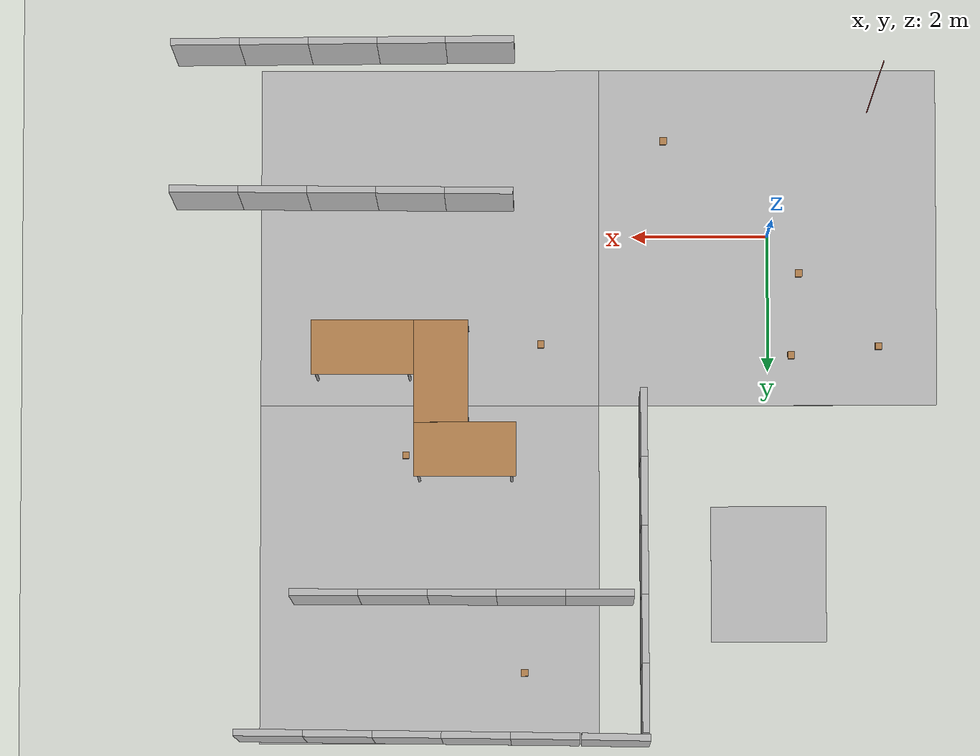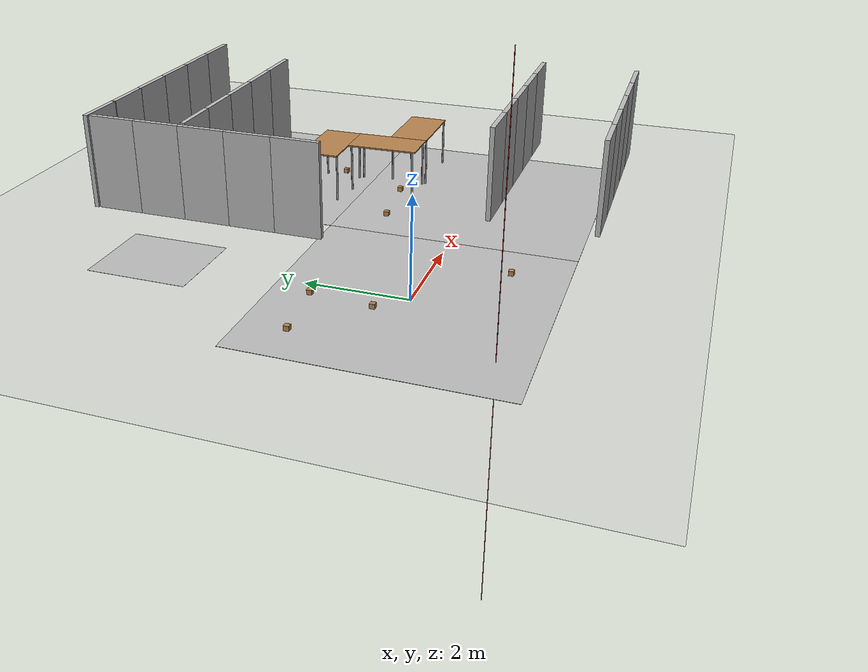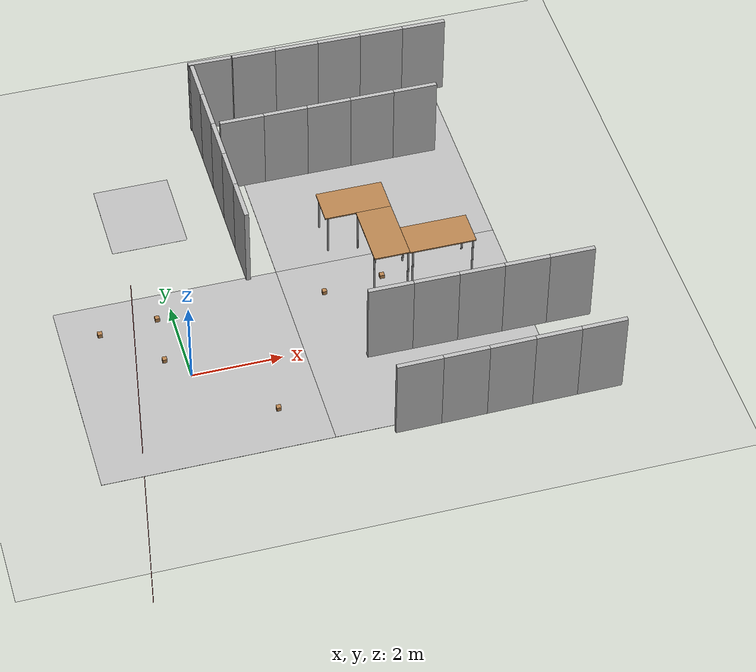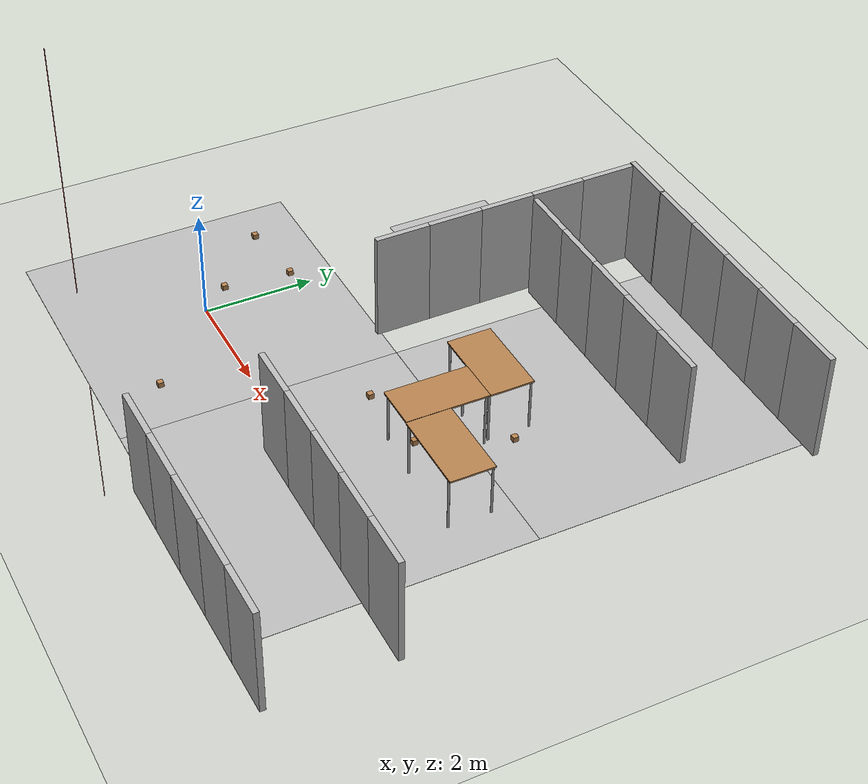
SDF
<sdf version="1.7">
 <world name="default">
  <model name="ground_plane">
   <static>1</static>
   <link name="link">
    <collision name="collision">
     <geometry><plane><normal>0 0 1</normal><size>100 100</size></plane></geometry>
     <surface><friction><ode><mu>100</mu><mu2>50</mu2></ode></friction></surface>
    </collision>
    <visual name="visual">
     <cast_shadows>0</cast_shadows>
     <geometry><plane><normal>0 0 1</normal><size>100 100</size></plane></geometry>
     <material>
      <script><uri>file://media/materials/scripts/gazebo.material</uri><name>Gazebo/Grey</name></script>
     </material>
    </visual>
   </link>
  </model>
  <model name="line_flooring">
   <link name="link">
    <collision name="collision">
     <geometry><plane><normal>0 0 1</normal><size>5 5</size></plane></geometry>
     <surface><friction><ode><mu>100</mu><mu2>50</mu2></ode></friction></surface>
    </collision>
    <visual name="visual">
     <geometry><plane><normal>0 0 1</normal><size>5 5</size></plane></geometry>
     <material>
      <script>
       <uri>model://env_line_flooring/materials/test_texture.material</uri>
       <name>LineFlooringTexture</name>
      </script>
     </material>
    </visual>
   </link>
   <pose>0 0 0.001 0 -0 0</pose>
   <static>1</static>
  </model>
  <model name="line_flooring2">
   <link name="link">
    <collision name="collision">
     <geometry><plane><normal>0 0 1</normal><size>5 5</size></plane></geometry>
     <surface><friction><ode><mu>100</mu><mu2>50</mu2></ode></friction></surface>
    </collision>
    <visual name="visual">
     <geometry><plane><normal>0 0 1</normal><size>5 5</size></plane></geometry>
     <material>
      <script>
       <uri>model://env_line_flooring/materials/test_texture.material</uri>
       <name>LineFlooringTexture</name>
      </script>
     </material>
    </visual>
   </link>
   <pose>5 0 0.001 0 -0 0</pose>
   <static>1</static>
  </model>
  <model name="line_flooring3">
   <link name="link">
    <collision name="collision">
     <geometry><plane><normal>0 0 1</normal><size>5 5</size></plane></geometry>
     <surface><friction><ode><mu>100</mu><mu2>50</mu2></ode></friction></surface>
    </collision>
    <visual name="visual">
     <geometry><plane><normal>0 0 1</normal><size>5 5</size></plane></geometry>
     <material>
      <script>
       <uri>model://env_line_flooring/materials/test_texture.material</uri>
       <name>LineFlooringTexture</name>
      </script>
     </material>
    </visual>
   </link>
   <pose>5 5 0.001 0 -0 3.1415</pose>
   <static>1</static>
  </model>
  <model name="table">
   <static>1</static>
   <link name="link">
    <collision name="surface">
     <pose>0 0 1 0 -0 0</pose>
     <geometry><box><size>1.5 0.8 0.03</size></box></geometry>
     <surface><friction><ode><mu>0.6</mu><mu2>0.6</mu2></ode></friction></surface>
    </collision>
    <visual name="visual1">
     <pose>0 0 1 0 -0 0</pose>
     <geometry><box><size>1.5 0.8 0.03</size></box></geometry>
     <material>
      <script><uri>file://media/materials/scripts/gazebo.material</uri><name>Gazebo/Wood</name></script>
     </material>
    </visual>
    <collision name="front_left_leg">
     <pose>0.68 0.38 0.5 0 -0 0</pose>
     <geometry><cylinder><radius>0.02</radius><length>1</length></cylinder></geometry>
    </collision>
    <visual name="front_left_leg">
     <pose>0.68 0.38 0.5 0 -0 0</pose>
     <geometry><cylinder><radius>0.02</radius><length>1</length></cylinder></geometry>
     <material>
      <script><uri>file://media/materials/scripts/gazebo.material</uri><name>Gazebo/Grey</name></script>
     </material>
    </visual>
    <collision name="front_right_leg">
     <pose>0.68 -0.38 0.5 0 -0 0</pose>
     <geometry><cylinder><radius>0.02</radius><length>1</length></cylinder></geometry>
    </collision>
    <visual name="front_right_leg">
     <pose>0.68 -0.38 0.5 0 -0 0</pose>
     <geometry><cylinder><radius>0.02</radius><length>1</length></cylinder></geometry>
     <material>
      <script><uri>file://media/materials/scripts/gazebo.material</uri><name>Gazebo/Grey</name></script>
     </material>
    </visual>
    <collision name="back_right_leg">
     <pose>-0.68 -0.38 0.5 0 -0 0</pose>
     <geometry><cylinder><radius>0.02</radius><length>1</length></cylinder></geometry>
    </collision>
    <visual name="back_right_leg">
     <pose>-0.68 -0.38 0.5 0 -0 0</pose>
     <geometry><cylinder><radius>0.02</radius><length>1</length></cylinder></geometry>
     <material>
      <script><uri>file://media/materials/scripts/gazebo.material</uri><name>Gazebo/Grey</name></script>
     </material>
    </visual>
    <collision name="back_left_leg">
     <pose>-0.68 0.38 0.5 0 -0 0</pose>
     <geometry><cylinder><radius>0.02</radius><length>1</length></cylinder></geometry>
    </collision>
    <visual name="back_left_leg">
     <pose>-0.68 0.38 0.5 0 -0 0</pose>
     <geometry><cylinder><radius>0.02</radius><length>1</length></cylinder></geometry>
     <material>
      <script><uri>file://media/materials/scripts/gazebo.material</uri><name>Gazebo/Grey</name></script>
     </material>
    </visual>
   </link>
   <pose>4.81799 2.07912 0.010412 -4.7e-05 -0.009088 -1.56892</pose>
  </model>
  <model name="wood_cube_10cm">
   <link name="link">
    <pose>0 0 0.05 0 -0 0</pose>
    <inertial>
     <mass>0.5167</mass>
     <inertia>
      <ixx>0.000861167</ixx>
      <ixy>0</ixy>
      <ixz>0</ixz>
      <iyy>0.000861167</iyy>
      <iyz>0</iyz>
      <izz>0.000861167</izz>
     </inertia>
    </inertial>
    <collision name="collision">
     <geometry><box><size>0.1 0.1 0.1</size></box></geometry>
     <surface>
      <contact>
       <poissons_ratio>0.347</poissons_ratio>
       <elastic_modulus>8.8e+09</elastic_modulus>
       <ode><kp>100000</kp><kd>100</kd><max_vel>100</max_vel><min_depth>0.001</min_depth></ode>
      </contact>
      <friction>
       <torsional>
        <coefficient>1</coefficient>
        <use_patch_radius>0</use_patch_radius>
        <surface_radius>0.01</surface_radius>
       </torsional>
      </friction>
     </surface>
    </collision>
    <visual name="visual">
     <geometry><box><size>0.1 0.1 0.1</size></box></geometry>
     <material>
      <script><uri>file://media/materials/scripts/gazebo.material</uri><name>Gazebo/Wood</name></script>
     </material>
    </visual>
   </link>
   <pose>1.54178 -1.4356 -3e-06 1e-06 -3e-06 -1e-06</pose>
  </model>
  <model name="env_large_room">
   <link name="base">
    <inertial>
     <mass>100</mass>
     <inertia><ixx>33.4</ixx><ixy>0</ixy><ixz>0</ixz><iyy>41.7</iyy><iyz>0</iyz><izz>8.42</izz></inertia>
    </inertial>
    <collision name="collision1">
     <pose>-2 0 0 0 -0 0</pose>
     <geometry><box><size>1 0.1 2</size></box></geometry>
    </collision>
    <collision name="collision2">
     <pose>-1 0 0 0 -0 0</pose>
     <geometry><box><size>1 0.1 2</size></box></geometry>
    </collision>
    <collision name="collision3"><geometry><box><size>1 0.1 2</size></box></geometry></collision>
    <collision name="collision4">
     <pose>1 0 0 0 -0 0</pose>
     <geometry><box><size>1 0.1 2</size></box></geometry>
    </collision>
    <collision name="collision5">
     <pose>2 0 0 0 -0 0</pose>
     <geometry><box><size>1 0.1 2</size></box></geometry>
    </collision>
    <visual name="visual1">
     <pose>-2 0 0 0 -0 0</pose>
     <geometry><box><size>1 0.1 2</size></box></geometry>
     <material>
      <script><uri>model://env_wall/materials/test_texture.material</uri><name>WallTexture01</name></script>
     </material>
    </visual>
    <visual name="visual2">
     <pose>-1 0 0 0 -0 0</pose>
     <geometry><box><size>1 0.1 2</size></box></geometry>
     <material>
      <script><uri>model://env_wall/materials/test_texture.material</uri><name>WallTexture01</name></script>
     </material>
    </visual>
    <visual name="visual3">
     <geometry><box><size>1 0.1 2</size></box></geometry>
     <material>
      <script><uri>model://env_wall/materials/test_texture.material</uri><name>WallTexture01</name></script>
     </material>
    </visual>
    <visual name="visual4">
     <pose>1 0 0 0 -0 0</pose>
     <geometry><box><size>1 0.1 2</size></box></geometry>
     <material>
      <script><uri>model://env_wall/materials/test_texture.material</uri><name>WallTexture01</name></script>
     </material>
    </visual>
    <visual name="visual5">
     <pose>2 0 0 0 -0 0</pose>
     <geometry><box><size>1 0.1 2</size></box></geometry>
     <material>
      <script><uri>model://env_wall/materials/test_texture.material</uri><name>WallTexture01</name></script>
     </material>
    </visual>
   </link>
   <pose>4.49859 5.40134 1.0008 -6e-06 -0 -0.002793</pose>
  </model>
  <model name="env_large_room_0">
   <link name="base">
    <inertial>
     <mass>100</mass>
     <inertia><ixx>33.4</ixx><ixy>0</ixy><ixz>0</ixz><iyy>41.7</iyy><iyz>0</iyz><izz>8.42</izz></inertia>
    </inertial>
    <collision name="collision1">
     <pose>-2 0 0 0 -0 0</pose>
     <geometry><box><size>1 0.1 2</size></box></geometry>
    </collision>
    <collision name="collision2">
     <pose>-1 0 0 0 -0 0</pose>
     <geometry><box><size>1 0.1 2</size></box></geometry>
    </collision>
    <collision name="collision3"><geometry><box><size>1 0.1 2</size></box></geometry></collision>
    <collision name="collision4">
     <pose>1 0 0 0 -0 0</pose>
     <geometry><box><size>1 0.1 2</size></box></geometry>
    </collision>
    <collision name="collision5">
     <pose>2 0 0 0 -0 0</pose>
     <geometry><box><size>1 0.1 2</size></box></geometry>
    </collision>
    <visual name="visual1">
     <pose>-2 0 0 0 -0 0</pose>
     <geometry><box><size>1 0.1 2</size></box></geometry>
     <material>
      <script><uri>model://env_wall/materials/test_texture.material</uri><name>WallTexture01</name></script>
     </material>
    </visual>
    <visual name="visual2">
     <pose>-1 0 0 0 -0 0</pose>
     <geometry><box><size>1 0.1 2</size></box></geometry>
     <material>
      <script><uri>model://env_wall/materials/test_texture.material</uri><name>WallTexture01</name></script>
     </material>
    </visual>
    <visual name="visual3">
     <geometry><box><size>1 0.1 2</size></box></geometry>
     <material>
      <script><uri>model://env_wall/materials/test_texture.material</uri><name>WallTexture01</name></script>
     </material>
    </visual>
    <visual name="visual4">
     <pose>1 0 0 0 -0 0</pose>
     <geometry><box><size>1 0.1 2</size></box></geometry>
     <material>
      <script><uri>model://env_wall/materials/test_texture.material</uri><name>WallTexture01</name></script>
     </material>
    </visual>
    <visual name="visual5">
     <pose>2 0 0 0 -0 0</pose>
     <geometry><box><size>1 0.1 2</size></box></geometry>
     <material>
      <script><uri>model://env_wall/materials/test_texture.material</uri><name>WallTexture01</name></script>
     </material>
    </visual>
   </link>
   <pose>6.25772 -0.460538 1.001 4e-06 -4e-06 -0.006764</pose>
  </model>
  <model name="table_0">
   <static>1</static>
   <link name="link">
    <collision name="surface">
     <pose>0 0 1 0 -0 0</pose>
     <geometry><box><size>1.5 0.8 0.03</size></box></geometry>
     <surface><friction><ode><mu>0.6</mu><mu2>0.6</mu2></ode></friction></surface>
    </collision>
    <visual name="visual1">
     <pose>0 0 1 0 -0 0</pose>
     <geometry><box><size>1.5 0.8 0.03</size></box></geometry>
     <material>
      <script><uri>file://media/materials/scripts/gazebo.material</uri><name>Gazebo/Wood</name></script>
     </material>
    </visual>
    <collision name="front_left_leg">
     <pose>0.68 0.38 0.5 0 -0 0</pose>
     <geometry><cylinder><radius>0.02</radius><length>1</length></cylinder></geometry>
    </collision>
    <visual name="front_left_leg">
     <pose>0.68 0.38 0.5 0 -0 0</pose>
     <geometry><cylinder><radius>0.02</radius><length>1</length></cylinder></geometry>
     <material>
      <script><uri>file://media/materials/scripts/gazebo.material</uri><name>Gazebo/Grey</name></script>
     </material>
    </visual>
    <collision name="front_right_leg">
     <pose>0.68 -0.38 0.5 0 -0 0</pose>
     <geometry><cylinder><radius>0.02</radius><length>1</length></cylinder></geometry>
    </collision>
    <visual name="front_right_leg">
     <pose>0.68 -0.38 0.5 0 -0 0</pose>
     <geometry><cylinder><radius>0.02</radius><length>1</length></cylinder></geometry>
     <material>
      <script><uri>file://media/materials/scripts/gazebo.material</uri><name>Gazebo/Grey</name></script>
     </material>
    </visual>
    <collision name="back_right_leg">
     <pose>-0.68 -0.38 0.5 0 -0 0</pose>
     <geometry><cylinder><radius>0.02</radius><length>1</length></cylinder></geometry>
    </collision>
    <visual name="back_right_leg">
     <pose>-0.68 -0.38 0.5 0 -0 0</pose>
     <geometry><cylinder><radius>0.02</radius><length>1</length></cylinder></geometry>
     <material>
      <script><uri>file://media/materials/scripts/gazebo.material</uri><name>Gazebo/Grey</name></script>
     </material>
    </visual>
    <collision name="back_left_leg">
     <pose>-0.68 0.38 0.5 0 -0 0</pose>
     <geometry><cylinder><radius>0.02</radius><length>1</length></cylinder></geometry>
    </collision>
    <visual name="back_left_leg">
     <pose>-0.68 0.38 0.5 0 -0 0</pose>
     <geometry><cylinder><radius>0.02</radius><length>1</length></cylinder></geometry>
     <material>
      <script><uri>file://media/materials/scripts/gazebo.material</uri><name>Gazebo/Grey</name></script>
     </material>
    </visual>
   </link>
   <pose>4.46738 3.23399 0 0 -0 0</pose>
  </model>
  <model name="env_large_room_6">
   <link name="base">
    <inertial>
     <mass>100</mass>
     <inertia><ixx>33.4</ixx><ixy>0</ixy><ixz>0</ixz><iyy>41.7</iyy><iyz>0</iyz><izz>8.42</izz></inertia>
    </inertial>
    <collision name="collision1">
     <pose>-2 0 0 0 -0 0</pose>
     <geometry><box><size>1 0.1 2</size></box></geometry>
    </collision>
    <collision name="collision2">
     <pose>-1 0 0 0 -0 0</pose>
     <geometry><box><size>1 0.1 2</size></box></geometry>
    </collision>
    <collision name="collision3"><geometry><box><size>1 0.1 2</size></box></geometry></collision>
    <collision name="collision4">
     <pose>1 0 0 0 -0 0</pose>
     <geometry><box><size>1 0.1 2</size></box></geometry>
    </collision>
    <collision name="collision5">
     <pose>2 0 0 0 -0 0</pose>
     <geometry><box><size>1 0.1 2</size></box></geometry>
    </collision>
    <visual name="visual1">
     <pose>-2 0 0 0 -0 0</pose>
     <geometry><box><size>1 0.1 2</size></box></geometry>
     <material>
      <script><uri>model://env_wall/materials/test_texture.material</uri><name>WallTexture01</name></script>
     </material>
    </visual>
    <visual name="visual2">
     <pose>-1 0 0 0 -0 0</pose>
     <geometry><box><size>1 0.1 2</size></box></geometry>
     <material>
      <script><uri>model://env_wall/materials/test_texture.material</uri><name>WallTexture01</name></script>
     </material>
    </visual>
    <visual name="visual3">
     <geometry><box><size>1 0.1 2</size></box></geometry>
     <material>
      <script><uri>model://env_wall/materials/test_texture.material</uri><name>WallTexture01</name></script>
     </material>
    </visual>
    <visual name="visual4">
     <pose>1 0 0 0 -0 0</pose>
     <geometry><box><size>1 0.1 2</size></box></geometry>
     <material>
      <script><uri>model://env_wall/materials/test_texture.material</uri><name>WallTexture01</name></script>
     </material>
    </visual>
    <visual name="visual5">
     <pose>2 0 0 0 -0 0</pose>
     <geometry><box><size>1 0.1 2</size></box></geometry>
     <material>
      <script><uri>model://env_wall/materials/test_texture.material</uri><name>WallTexture01</name></script>
     </material>
    </visual>
   </link>
   <pose>6.24098 -2.64813 1.00079 -8e-06 8.3e-05 0.007746</pose>
  </model>
  <model name="wood_cube_10cm_0">
   <link name="link">
    <pose>0 0 0.05 0 -0 0</pose>
    <inertial>
     <mass>0.5167</mass>
     <inertia>
      <ixx>0.000861167</ixx>
      <ixy>0</ixy>
      <ixz>0</ixz>
      <iyy>0.000861167</iyy>
      <iyz>0</iyz>
      <izz>0.000861167</izz>
     </inertia>
    </inertial>
    <collision name="collision">
     <geometry><box><size>0.1 0.1 0.1</size></box></geometry>
     <surface>
      <contact>
       <poissons_ratio>0.347</poissons_ratio>
       <elastic_modulus>8.8e+09</elastic_modulus>
       <ode><kp>100000</kp><kd>100</kd><max_vel>100</max_vel><min_depth>0.001</min_depth></ode>
      </contact>
      <friction>
       <torsional>
        <coefficient>1</coefficient>
        <use_patch_radius>0</use_patch_radius>
        <surface_radius>0.01</surface_radius>
       </torsional>
      </friction>
     </surface>
    </collision>
    <visual name="visual">
     <geometry><box><size>0.1 0.1 0.1</size></box></geometry>
     <material>
      <script><uri>file://media/materials/scripts/gazebo.material</uri><name>Gazebo/Wood</name></script>
     </material>
    </visual>
   </link>
   <pose>3.59739 6.45566 -3e-06 -1e-06 3e-06 0</pose>
  </model>
  <model name="wood_cube_10cm_1">
   <link name="link">
    <pose>0 0 0.05 0 -0 0</pose>
    <inertial>
     <mass>0.5167</mass>
     <inertia>
      <ixx>0.000861167</ixx>
      <ixy>0</ixy>
      <ixz>0</ixz>
      <iyy>0.000861167</iyy>
      <iyz>0</iyz>
      <izz>0.000861167</izz>
     </inertia>
    </inertial>
    <collision name="collision">
     <geometry><box><size>0.1 0.1 0.1</size></box></geometry>
     <surface>
      <contact>
       <poissons_ratio>0.347</poissons_ratio>
       <elastic_modulus>8.8e+09</elastic_modulus>
       <ode><kp>100000</kp><kd>100</kd><max_vel>100</max_vel><min_depth>0.001</min_depth></ode>
      </contact>
      <friction>
       <torsional>
        <coefficient>1</coefficient>
        <use_patch_radius>0</use_patch_radius>
        <surface_radius>0.01</surface_radius>
       </torsional>
      </friction>
     </surface>
    </collision>
    <visual name="visual">
     <geometry><box><size>0.1 0.1 0.1</size></box></geometry>
     <material>
      <script><uri>file://media/materials/scripts/gazebo.material</uri><name>Gazebo/Wood</name></script>
     </material>
    </visual>
   </link>
   <pose>5.35255 3.24149 -3e-06 -3e-06 1e-06 -1.1e-05</pose>
  </model>
  <model name="wood_cube_10cm_2">
   <link name="link">
    <pose>0 0 0.05 0 -0 0</pose>
    <inertial>
     <mass>0.5167</mass>
     <inertia>
      <ixx>0.000861167</ixx>
      <ixy>0</ixy>
      <ixz>0</ixz>
      <iyy>0.000861167</iyy>
      <iyz>0</iyz>
      <izz>0.000861167</izz>
     </inertia>
    </inertial>
    <collision name="collision">
     <geometry><box><size>0.1 0.1 0.1</size></box></geometry>
     <surface>
      <contact>
       <poissons_ratio>0.347</poissons_ratio>
       <elastic_modulus>8.8e+09</elastic_modulus>
       <ode><kp>100000</kp><kd>100</kd><max_vel>100</max_vel><min_depth>0.001</min_depth></ode>
      </contact>
      <friction>
       <torsional>
        <coefficient>1</coefficient>
        <use_patch_radius>0</use_patch_radius>
        <surface_radius>0.01</surface_radius>
       </torsional>
      </friction>
     </surface>
    </collision>
    <visual name="visual">
     <geometry><box><size>0.1 0.1 0.1</size></box></geometry>
     <material>
      <script><uri>file://media/materials/scripts/gazebo.material</uri><name>Gazebo/Wood</name></script>
     </material>
    </visual>
   </link>
   <pose>3.35972 1.59541 -3e-06 3e-06 -1e-06 0</pose>
  </model>
  <model name="wood_cube_10cm_3">
   <link name="link">
    <pose>0 0 0.05 0 -0 0</pose>
    <inertial>
     <mass>0.5167</mass>
     <inertia>
      <ixx>0.000861167</ixx>
      <ixy>0</ixy>
      <ixz>0</ixz>
      <iyy>0.000861167</iyy>
      <iyz>0</iyz>
      <izz>0.000861167</izz>
     </inertia>
    </inertial>
    <collision name="collision">
     <geometry><box><size>0.1 0.1 0.1</size></box></geometry>
     <surface>
      <contact>
       <poissons_ratio>0.347</poissons_ratio>
       <elastic_modulus>8.8e+09</elastic_modulus>
       <ode><kp>100000</kp><kd>100</kd><max_vel>100</max_vel><min_depth>0.001</min_depth></ode>
      </contact>
      <friction>
       <torsional>
        <coefficient>1</coefficient>
        <use_patch_radius>0</use_patch_radius>
        <surface_radius>0.01</surface_radius>
       </torsional>
      </friction>
     </surface>
    </collision>
    <visual name="visual">
     <geometry><box><size>0.1 0.1 0.1</size></box></geometry>
     <material>
      <script><uri>file://media/materials/scripts/gazebo.material</uri><name>Gazebo/Wood</name></script>
     </material>
    </visual>
   </link>
   <pose>4.70642 1.74347 -3e-06 1e-06 -3e-06 0</pose>
  </model>
  <model name="env_large_room_7">
   <link name="base">
    <inertial>
     <mass>100</mass>
     <inertia><ixx>33.4</ixx><ixy>0</ixy><ixz>0</ixz><iyy>41.7</iyy><iyz>0</iyz><izz>8.42</izz></inertia>
    </inertial>
    <collision name="collision"><geometry><box><size>1 0.1 2</size></box></geometry></collision>
    <visual name="visual">
     <geometry><box><size>1 0.1 2</size></box></geometry>
     <material>
      <script><uri>model://env_wall/materials/test_texture.material</uri><name>WallTexture01</name></script>
     </material>
    </visual>
   </link>
   <pose>2.26778 7.48741 1.00081 7e-06 -0 -0.019106</pose>
  </model>
  <model name="table_1">
   <static>1</static>
   <link name="link">
    <collision name="surface">
     <pose>0 0 1 0 -0 0</pose>
     <geometry><box><size>1.5 0.8 0.03</size></box></geometry>
     <surface><friction><ode><mu>0.6</mu><mu2>0.6</mu2></ode></friction></surface>
    </collision>
    <visual name="visual1">
     <pose>0 0 1 0 -0 0</pose>
     <geometry><box><size>1.5 0.8 0.03</size></box></geometry>
     <material>
      <script><uri>file://media/materials/scripts/gazebo.material</uri><name>Gazebo/Wood</name></script>
     </material>
    </visual>
    <collision name="front_left_leg">
     <pose>0.68 0.38 0.5 0 -0 0</pose>
     <geometry><cylinder><radius>0.02</radius><length>1</length></cylinder></geometry>
    </collision>
    <visual name="front_left_leg">
     <pose>0.68 0.38 0.5 0 -0 0</pose>
     <geometry><cylinder><radius>0.02</radius><length>1</length></cylinder></geometry>
     <material>
      <script><uri>file://media/materials/scripts/gazebo.material</uri><name>Gazebo/Grey</name></script>
     </material>
    </visual>
    <collision name="front_right_leg">
     <pose>0.68 -0.38 0.5 0 -0 0</pose>
     <geometry><cylinder><radius>0.02</radius><length>1</length></cylinder></geometry>
    </collision>
    <visual name="front_right_leg">
     <pose>0.68 -0.38 0.5 0 -0 0</pose>
     <geometry><cylinder><radius>0.02</radius><length>1</length></cylinder></geometry>
     <material>
      <script><uri>file://media/materials/scripts/gazebo.material</uri><name>Gazebo/Grey</name></script>
     </material>
    </visual>
    <collision name="back_right_leg">
     <pose>-0.68 -0.38 0.5 0 -0 0</pose>
     <geometry><cylinder><radius>0.02</radius><length>1</length></cylinder></geometry>
    </collision>
    <visual name="back_right_leg">
     <pose>-0.68 -0.38 0.5 0 -0 0</pose>
     <geometry><cylinder><radius>0.02</radius><length>1</length></cylinder></geometry>
     <material>
      <script><uri>file://media/materials/scripts/gazebo.material</uri><name>Gazebo/Grey</name></script>
     </material>
    </visual>
    <collision name="back_left_leg">
     <pose>-0.68 0.38 0.5 0 -0 0</pose>
     <geometry><cylinder><radius>0.02</radius><length>1</length></cylinder></geometry>
    </collision>
    <visual name="back_left_leg">
     <pose>-0.68 0.38 0.5 0 -0 0</pose>
     <geometry><cylinder><radius>0.02</radius><length>1</length></cylinder></geometry>
     <material>
      <script><uri>file://media/materials/scripts/gazebo.material</uri><name>Gazebo/Grey</name></script>
     </material>
    </visual>
   </link>
   <pose>5.96965 1.73408 0.006674 0 -0 0</pose>
  </model>
  <model name="env_harvestx">
   <static>1</static>
   <link name="link">
    <visual name="visual">
     <geometry><plane><normal>0 0 1</normal><size>2 1.7</size></plane></geometry>
     <material>
      <script><uri>model://env_harvestx/materials/test_texture.material</uri><name>HarvestXTexture</name></script>
     </material>
    </visual>
   </link>
   <pose>0 5 0.001 0 0 -1.57</pose>
  </model>
  <model name="wood_cube_10cm_clone">
   <link name="link">
    <pose>0 0 0.05 0 -0 0</pose>
    <inertial>
     <mass>0.5167</mass>
     <inertia>
      <ixx>0.000861167</ixx>
      <ixy>0</ixy>
      <ixz>0</ixz>
      <iyy>0.000861167</iyy>
      <iyz>0</iyz>
      <izz>0.000861167</izz>
     </inertia>
    </inertial>
    <collision name="collision">
     <geometry><box><size>0.1 0.1 0.1</size></box></geometry>
     <surface>
      <contact>
       <poissons_ratio>0.347</poissons_ratio>
       <elastic_modulus>8.8e+09</elastic_modulus>
       <ode><kp>100000</kp><kd>100</kd><max_vel>100</max_vel><min_depth>0.001</min_depth></ode>
      </contact>
      <friction>
       <torsional>
        <coefficient>1</coefficient>
        <use_patch_radius>0</use_patch_radius>
        <surface_radius>0.01</surface_radius>
       </torsional>
      </friction>
     </surface>
    </collision>
    <visual name="visual">
     <geometry><box><size>0.1 0.1 0.1</size></box></geometry>
     <material>
      <script><uri>file://media/materials/scripts/gazebo.material</uri><name>Gazebo/Wood</name></script>
     </material>
    </visual>
   </link>
   <pose>-1.64124 1.62293 -3e-06 -1e-06 -3e-06 -0</pose>
  </model>
  <model name="wood_cube_10cm_clone_0">
   <link name="link">
    <pose>0 0 0.05 0 -0 0</pose>
    <inertial>
     <mass>0.5167</mass>
     <inertia>
      <ixx>0.000861167</ixx>
      <ixy>0</ixy>
      <ixz>0</ixz>
      <iyy>0.000861167</iyy>
      <iyz>0</iyz>
      <izz>0.000861167</izz>
     </inertia>
    </inertial>
    <collision name="collision">
     <geometry><box><size>0.1 0.1 0.1</size></box></geometry>
     <surface>
      <contact>
       <poissons_ratio>0.347</poissons_ratio>
       <elastic_modulus>8.8e+09</elastic_modulus>
       <ode><kp>100000</kp><kd>100</kd><max_vel>100</max_vel><min_depth>0.001</min_depth></ode>
      </contact>
      <friction>
       <torsional>
        <coefficient>1</coefficient>
        <use_patch_radius>0</use_patch_radius>
        <surface_radius>0.01</surface_radius>
       </torsional>
      </friction>
     </surface>
    </collision>
    <visual name="visual">
     <geometry><box><size>0.1 0.1 0.1</size></box></geometry>
     <material>
      <script><uri>file://media/materials/scripts/gazebo.material</uri><name>Gazebo/Wood</name></script>
     </material>
    </visual>
   </link>
   <pose>-0.462864 0.538434 -3e-06 1e-06 3e-06 -0</pose>
  </model>
  <model name="env_large_room_6_clone_0">
   <link name="base">
    <inertial>
     <mass>100</mass>
     <inertia><ixx>33.4</ixx><ixy>0</ixy><ixz>0</ixz><iyy>41.7</iyy><iyz>0</iyz><izz>8.42</izz></inertia>
    </inertial>
    <collision name="collision1">
     <pose>-2 0 0 0 -0 0</pose>
     <geometry><box><size>1 0.1 2</size></box></geometry>
    </collision>
    <collision name="collision2">
     <pose>-1 0 0 0 -0 0</pose>
     <geometry><box><size>1 0.1 2</size></box></geometry>
    </collision>
    <collision name="collision3"><geometry><box><size>1 0.1 2</size></box></geometry></collision>
    <collision name="collision4">
     <pose>1 0 0 0 -0 0</pose>
     <geometry><box><size>1 0.1 2</size></box></geometry>
    </collision>
    <collision name="collision5">
     <pose>2 0 0 0 -0 0</pose>
     <geometry><box><size>1 0.1 2</size></box></geometry>
    </collision>
    <visual name="visual1">
     <pose>-2 0 0 0 -0 0</pose>
     <geometry><box><size>1 0.1 2</size></box></geometry>
     <material>
      <script><uri>model://env_wall/materials/test_texture.material</uri><name>WallTexture01</name></script>
     </material>
    </visual>
    <visual name="visual2">
     <pose>-1 0 0 0 -0 0</pose>
     <geometry><box><size>1 0.1 2</size></box></geometry>
     <material>
      <script><uri>model://env_wall/materials/test_texture.material</uri><name>WallTexture01</name></script>
     </material>
    </visual>
    <visual name="visual3">
     <geometry><box><size>1 0.1 2</size></box></geometry>
     <material>
      <script><uri>model://env_wall/materials/test_texture.material</uri><name>WallTexture01</name></script>
     </material>
    </visual>
    <visual name="visual4">
     <pose>1 0 0 0 -0 0</pose>
     <geometry><box><size>1 0.1 2</size></box></geometry>
     <material>
      <script><uri>model://env_wall/materials/test_texture.material</uri><name>WallTexture01</name></script>
     </material>
    </visual>
    <visual name="visual5">
     <pose>2 0 0 0 -0 0</pose>
     <geometry><box><size>1 0.1 2</size></box></geometry>
     <material>
      <script><uri>model://env_wall/materials/test_texture.material</uri><name>WallTexture01</name></script>
     </material>
    </visual>
   </link>
   <pose>5.29254 7.44592 1.00081 -1.3e-05 -0 -0.012421</pose>
  </model>
  <model name="wood_cube_10cm_clone_0_clone">
   <link name="link">
    <pose>0 0 0.05 0 -0 0</pose>
    <inertial>
     <mass>0.5167</mass>
     <inertia>
      <ixx>0.000861167</ixx>
      <ixy>0</ixy>
      <ixz>0</ixz>
      <iyy>0.000861167</iyy>
      <iyz>0</iyz>
      <izz>0.000861167</izz>
     </inertia>
    </inertial>
    <collision name="collision">
     <geometry><box><size>0.1 0.1 0.1</size></box></geometry>
     <surface>
      <contact>
       <poissons_ratio>0.347</poissons_ratio>
       <elastic_modulus>8.8e+09</elastic_modulus>
       <ode><kp>100000</kp><kd>100</kd><max_vel>100</max_vel><min_depth>0.001</min_depth></ode>
      </contact>
      <friction>
       <torsional>
        <coefficient>1</coefficient>
        <use_patch_radius>0</use_patch_radius>
        <surface_radius>0.01</surface_radius>
       </torsional>
      </friction>
     </surface>
    </collision>
    <visual name="visual">
     <geometry><box><size>0.1 0.1 0.1</size></box></geometry>
     <material>
      <script><uri>file://media/materials/scripts/gazebo.material</uri><name>Gazebo/Wood</name></script>
     </material>
    </visual>
   </link>
   <pose>-0.346309 1.75709 -3e-06 1e-06 -3e-06 0</pose>
  </model>
  <model name="env_large_room_clone">
   <link name="base">
    <inertial>
     <mass>100</mass>
     <inertia><ixx>33.4</ixx><ixy>0</ixy><ixz>0</ixz><iyy>41.7</iyy><iyz>0</iyz><izz>8.42</izz></inertia>
    </inertial>
    <collision name="collision1">
     <pose>-2 0 0 0 -0 0</pose>
     <geometry><box><size>1 0.1 2</size></box></geometry>
    </collision>
    <collision name="collision2">
     <pose>-1 0 0 0 -0 0</pose>
     <geometry><box><size>1 0.1 2</size></box></geometry>
    </collision>
    <collision name="collision3"><geometry><box><size>1 0.1 2</size></box></geometry></collision>
    <collision name="collision4">
     <pose>1 0 0 0 -0 0</pose>
     <geometry><box><size>1 0.1 2</size></box></geometry>
    </collision>
    <collision name="collision5">
     <pose>2 0 0 0 -0 0</pose>
     <geometry><box><size>1 0.1 2</size></box></geometry>
    </collision>
    <visual name="visual1">
     <pose>-2 0 0 0 -0 0</pose>
     <geometry><box><size>1 0.1 2</size></box></geometry>
     <material>
      <script><uri>model://env_wall/materials/test_texture.material</uri><name>WallTexture01</name></script>
     </material>
    </visual>
    <visual name="visual2">
     <pose>-1 0 0 0 -0 0</pose>
     <geometry><box><size>1 0.1 2</size></box></geometry>
     <material>
      <script><uri>model://env_wall/materials/test_texture.material</uri><name>WallTexture01</name></script>
     </material>
    </visual>
    <visual name="visual3">
     <geometry><box><size>1 0.1 2</size></box></geometry>
     <material>
      <script><uri>model://env_wall/materials/test_texture.material</uri><name>WallTexture01</name></script>
     </material>
    </visual>
    <visual name="visual4">
     <pose>1 0 0 0 -0 0</pose>
     <geometry><box><size>1 0.1 2</size></box></geometry>
     <material>
      <script><uri>model://env_wall/materials/test_texture.material</uri><name>WallTexture01</name></script>
     </material>
    </visual>
    <visual name="visual5">
     <pose>2 0 0 0 -0 0</pose>
     <geometry><box><size>1 0.1 2</size></box></geometry>
     <material>
      <script><uri>model://env_wall/materials/test_texture.material</uri><name>WallTexture01</name></script>
     </material>
    </visual>
   </link>
   <pose>1.84985 4.92711 1.00083 -1.1e-05 -7e-05 -1.56607</pose>
  </model>
  <model name="ray_point_0">
   <static>1</static>
   <pose>-1.48703 -1.87197 0.005 0 -1.57075 0</pose>
   <link name="ray_link">
    <visual name="visual_box">
     <geometry><box><size>10 0.01 0.01</size></box></geometry>
     <material>
      <script><uri>file://media/materials/scripts/gazebo.material</uri><name>Gazebo/Red</name></script>
     </material>
    </visual>
    <sensor name="sensor_ray" type="ray">
     <ray>
      <range><min>0.05</min><max>50</max></range>
      <scan>
       <horizontal>
        <samples>640</samples>
        <resolution>1</resolution>
        <min_angle>0</min_angle>
        <max_angle>0</max_angle>
       </horizontal>
       <vertical><samples>1</samples><min_angle>0</min_angle><max_angle>0</max_angle></vertical>
      </scan>
     </ray>
     <always_on>1</always_on>
     <update_rate>1</update_rate>
     <plugin name="range" filename="libgazebo_ros_target_point.so">
      <ros><namespace>/start</namespace><remapping>~/out:=touched</remapping></ros>
      <output_type>std_msgs/Bool</output_type>
     </plugin>
    </sensor>
   </link>
  </model>
 </world>
</sdf>
